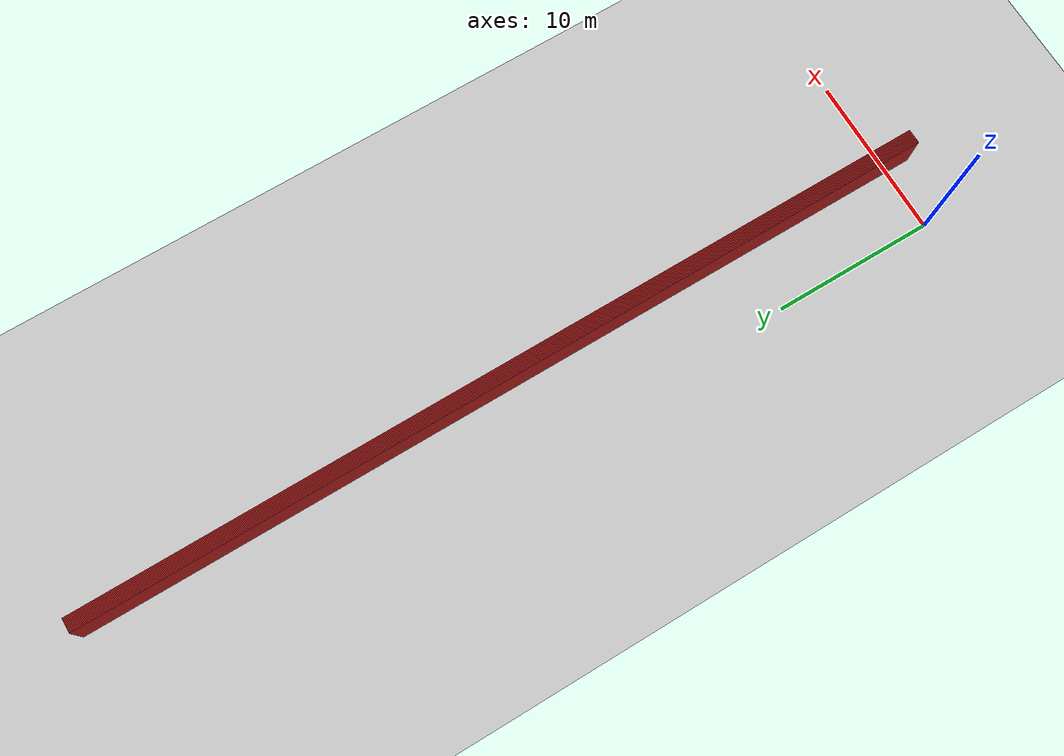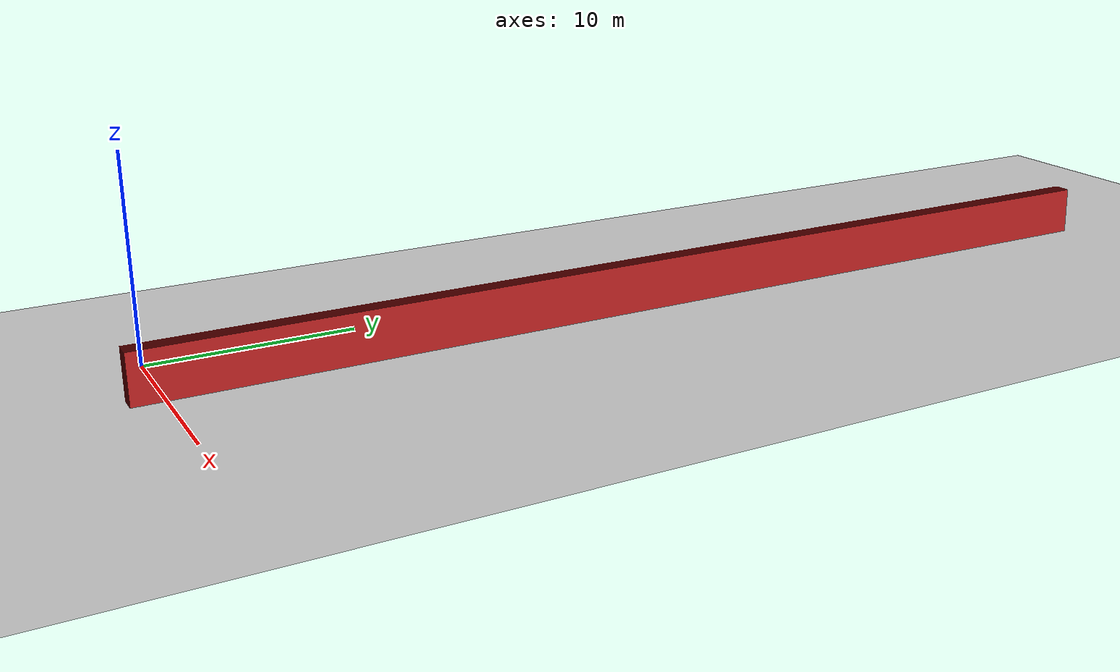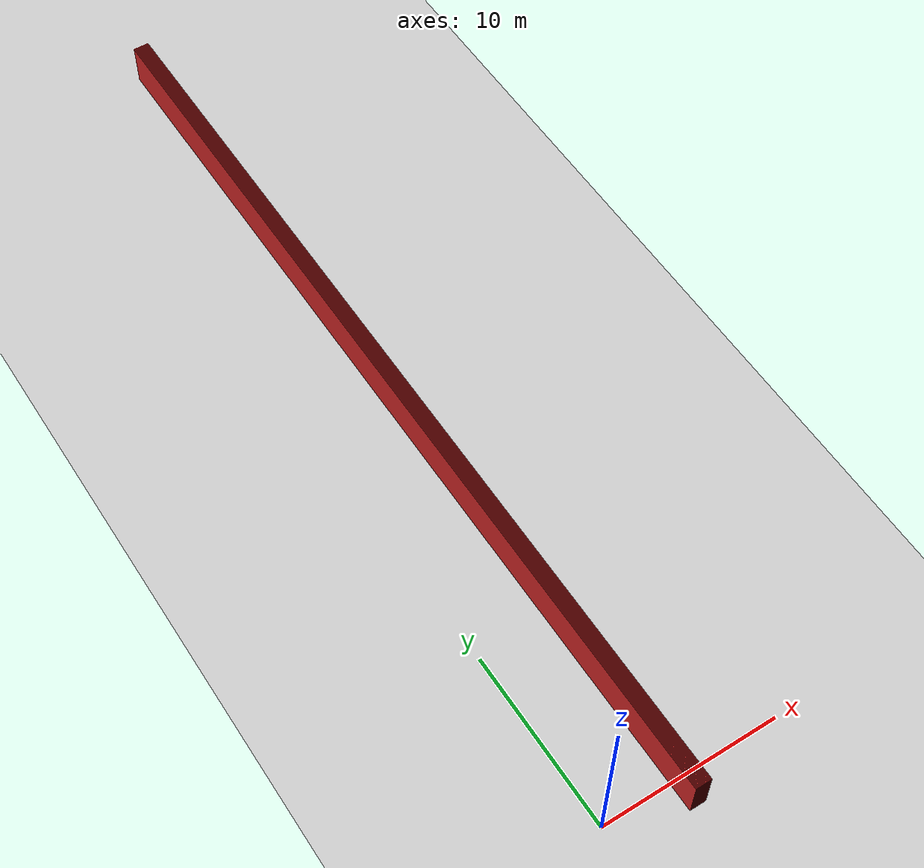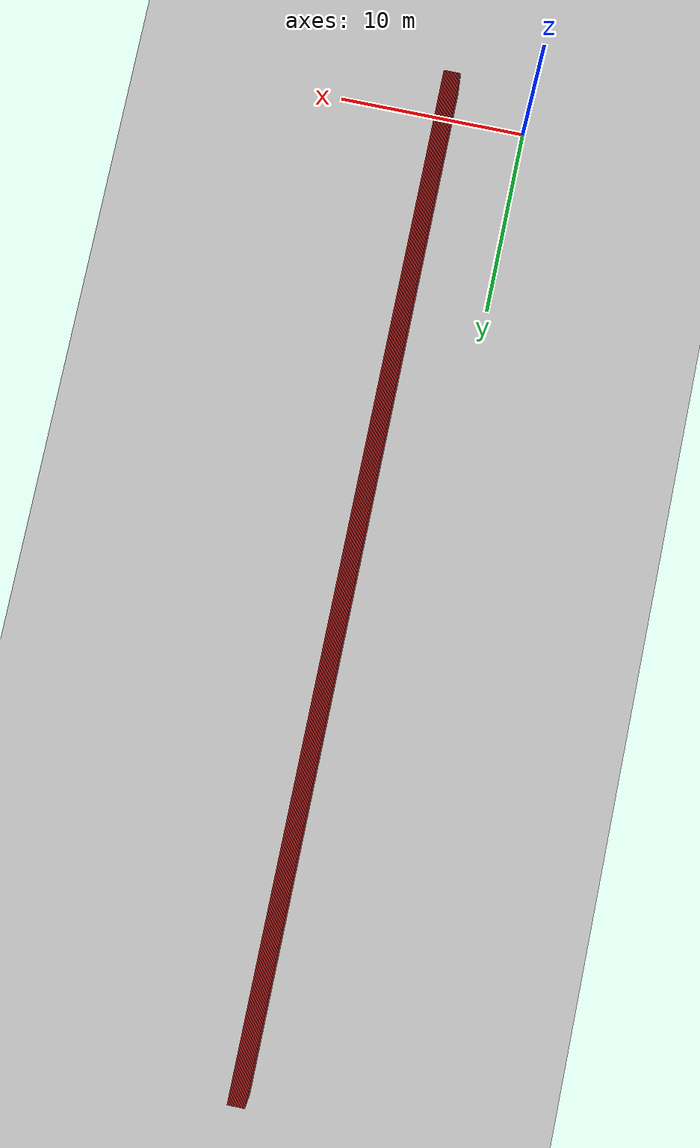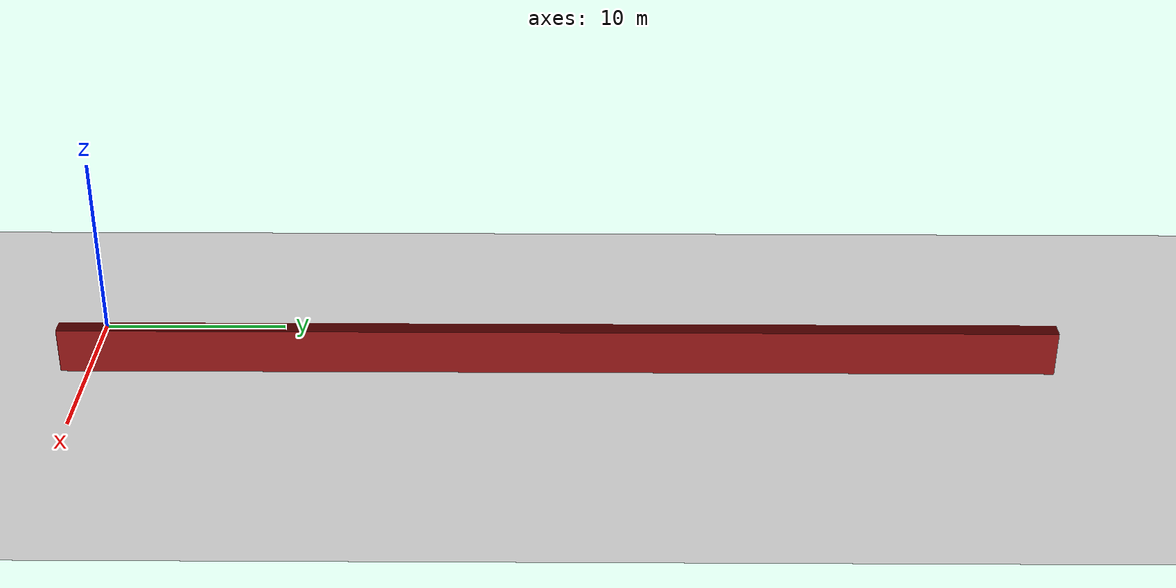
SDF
<sdf version="1.4">
 <world name="1_wall">
  <model name="ground_plane">
   <static>1</static>
   <link name="link">
    <collision name="collision">
     <geometry><plane><normal>0 0 1</normal><size>1000 1000</size></plane></geometry>
     <surface><friction><ode><mu>100</mu><mu2>50</mu2></ode></friction></surface>
    </collision>
    <visual name="visual">
     <cast_shadows>0</cast_shadows>
     <geometry><plane><normal>0 0 1</normal><size>10000 10000</size></plane></geometry>
     <material>
      <script><uri>file://media/materials/scripts/gazebo.material</uri><name>Gazebo/Grey</name></script>
     </material>
    </visual>
    <velocity_decay><linear>0</linear><angular>0</angular></velocity_decay>
   </link>
  </model>
  <model name="Wall_108">
   <static>1</static>
   <link name="Wall_108">
    <collision name="Wall_Collision_108">
     <geometry><box><size>53.65 0.05 2.5</size></box></geometry>
     <pose>0 0 1.25 0 -0 0</pose>
    </collision>
    <visual name="Wall_Visual_108">
     <pose>0 0 1.25 0 -0 0</pose>
     <geometry><box><size>53.65 0.05 2.5</size></box></geometry>
     <material>
      <script><uri>file://media/materials/scripts/gazebo.material</uri><name>Gazebo/Red</name></script>
     </material>
    </visual>
    <velocity_decay><linear>0</linear><angular>0</angular></velocity_decay>
    <pose>3.9 25.3 0 0 0 1.5707963267948966</pose>
   </link>
  </model>
  <model name="Wall_109">
   <static>1</static>
   <link name="Wall_109">
    <collision name="Wall_Collision_109">
     <geometry><box><size>53.65 0.05 2.5</size></box></geometry>
     <pose>0 0 1.25 0 -0 0</pose>
    </collision>
    <visual name="Wall_Visual_109">
     <pose>0 0 1.25 0 -0 0</pose>
     <geometry><box><size>53.65 0.05 2.5</size></box></geometry>
     <material>
      <script><uri>file://media/materials/scripts/gazebo.material</uri><name>Gazebo/Red</name></script>
     </material>
    </visual>
    <velocity_decay><linear>0</linear><angular>0</angular></velocity_decay>
    <pose>3.95 25.3 0 0 0 1.5707963267948966</pose>
   </link>
  </model>
  <model name="Wall_110">
   <static>1</static>
   <link name="Wall_110">
    <collision name="Wall_Collision_110">
     <geometry><box><size>53.65 0.05 2.5</size></box></geometry>
     <pose>0 0 1.25 0 -0 0</pose>
    </collision>
    <visual name="Wall_Visual_110">
     <pose>0 0 1.25 0 -0 0</pose>
     <geometry><box><size>53.65 0.05 2.5</size></box></geometry>
     <material>
      <script><uri>file://media/materials/scripts/gazebo.material</uri><name>Gazebo/Red</name></script>
     </material>
    </visual>
    <velocity_decay><linear>0</linear><angular>0</angular></velocity_decay>
    <pose>4.0 25.3 0 0 0 1.5707963267948966</pose>
   </link>
  </model>
  <model name="Wall_111">
   <static>1</static>
   <link name="Wall_111">
    <collision name="Wall_Collision_111">
     <geometry><box><size>53.65 0.05 2.5</size></box></geometry>
     <pose>0 0 1.25 0 -0 0</pose>
    </collision>
    <visual name="Wall_Visual_111">
     <pose>0 0 1.25 0 -0 0</pose>
     <geometry><box><size>53.65 0.05 2.5</size></box></geometry>
     <material>
      <script><uri>file://media/materials/scripts/gazebo.material</uri><name>Gazebo/Red</name></script>
     </material>
    </visual>
    <velocity_decay><linear>0</linear><angular>0</angular></velocity_decay>
    <pose>4.05 25.3 0 0 0 1.5707963267948966</pose>
   </link>
  </model>
  <model name="Wall_112">
   <static>1</static>
   <link name="Wall_112">
    <collision name="Wall_Collision_112">
     <geometry><box><size>53.65 0.05 2.5</size></box></geometry>
     <pose>0 0 1.25 0 -0 0</pose>
    </collision>
    <visual name="Wall_Visual_112">
     <pose>0 0 1.25 0 -0 0</pose>
     <geometry><box><size>53.65 0.05 2.5</size></box></geometry>
     <material>
      <script><uri>file://media/materials/scripts/gazebo.material</uri><name>Gazebo/Red</name></script>
     </material>
    </visual>
    <velocity_decay><linear>0</linear><angular>0</angular></velocity_decay>
    <pose>4.1 25.3 0 0 0 1.5707963267948966</pose>
   </link>
  </model>
  <model name="Wall_113">
   <static>1</static>
   <link name="Wall_113">
    <collision name="Wall_Collision_113">
     <geometry><box><size>53.65 0.05 2.5</size></box></geometry>
     <pose>0 0 1.25 0 -0 0</pose>
    </collision>
    <visual name="Wall_Visual_113">
     <pose>0 0 1.25 0 -0 0</pose>
     <geometry><box><size>53.65 0.05 2.5</size></box></geometry>
     <material>
      <script><uri>file://media/materials/scripts/gazebo.material</uri><name>Gazebo/Red</name></script>
     </material>
    </visual>
    <velocity_decay><linear>0</linear><angular>0</angular></velocity_decay>
    <pose>4.15 25.3 0 0 0 1.5707963267948966</pose>
   </link>
  </model>
  <model name="Wall_114">
   <static>1</static>
   <link name="Wall_114">
    <collision name="Wall_Collision_114">
     <geometry><box><size>53.65 0.05 2.5</size></box></geometry>
     <pose>0 0 1.25 0 -0 0</pose>
    </collision>
    <visual name="Wall_Visual_114">
     <pose>0 0 1.25 0 -0 0</pose>
     <geometry><box><size>53.65 0.05 2.5</size></box></geometry>
     <material>
      <script><uri>file://media/materials/scripts/gazebo.material</uri><name>Gazebo/Red</name></script>
     </material>
    </visual>
    <velocity_decay><linear>0</linear><angular>0</angular></velocity_decay>
    <pose>4.2 25.3 0 0 0 1.5707963267948966</pose>
   </link>
  </model>
  <model name="Wall_115">
   <static>1</static>
   <link name="Wall_115">
    <collision name="Wall_Collision_115">
     <geometry><box><size>53.65 0.05 2.5</size></box></geometry>
     <pose>0 0 1.25 0 -0 0</pose>
    </collision>
    <visual name="Wall_Visual_115">
     <pose>0 0 1.25 0 -0 0</pose>
     <geometry><box><size>53.65 0.05 2.5</size></box></geometry>
     <material>
      <script><uri>file://media/materials/scripts/gazebo.material</uri><name>Gazebo/Red</name></script>
     </material>
    </visual>
    <velocity_decay><linear>0</linear><angular>0</angular></velocity_decay>
    <pose>4.25 25.3 0 0 0 1.5707963267948966</pose>
   </link>
  </model>
  <model name="Wall_116">
   <static>1</static>
   <link name="Wall_116">
    <collision name="Wall_Collision_116">
     <geometry><box><size>53.65 0.05 2.5</size></box></geometry>
     <pose>0 0 1.25 0 -0 0</pose>
    </collision>
    <visual name="Wall_Visual_116">
     <pose>0 0 1.25 0 -0 0</pose>
     <geometry><box><size>53.65 0.05 2.5</size></box></geometry>
     <material>
      <script><uri>file://media/materials/scripts/gazebo.material</uri><name>Gazebo/Red</name></script>
     </material>
    </visual>
    <velocity_decay><linear>0</linear><angular>0</angular></velocity_decay>
    <pose>4.3 25.3 0 0 0 1.5707963267948966</pose>
   </link>
  </model>
  <model name="Wall_117">
   <static>1</static>
   <link name="Wall_117">
    <collision name="Wall_Collision_117">
     <geometry><box><size>53.65 0.05 2.5</size></box></geometry>
     <pose>0 0 1.25 0 -0 0</pose>
    </collision>
    <visual name="Wall_Visual_117">
     <pose>0 0 1.25 0 -0 0</pose>
     <geometry><box><size>53.65 0.05 2.5</size></box></geometry>
     <material>
      <script><uri>file://media/materials/scripts/gazebo.material</uri><name>Gazebo/Red</name></script>
     </material>
    </visual>
    <velocity_decay><linear>0</linear><angular>0</angular></velocity_decay>
    <pose>4.35 25.3 0 0 0 1.5707963267948966</pose>
   </link>
  </model>
  <model name="Wall_118">
   <static>1</static>
   <link name="Wall_118">
    <collision name="Wall_Collision_118">
     <geometry><box><size>53.65 0.05 2.5</size></box></geometry>
     <pose>0 0 1.25 0 -0 0</pose>
    </collision>
    <visual name="Wall_Visual_118">
     <pose>0 0 1.25 0 -0 0</pose>
     <geometry><box><size>53.65 0.05 2.5</size></box></geometry>
     <material>
      <script><uri>file://media/materials/scripts/gazebo.material</uri><name>Gazebo/Red</name></script>
     </material>
    </visual>
    <velocity_decay><linear>0</linear><angular>0</angular></velocity_decay>
    <pose>4.4 25.3 0 0 0 1.5707963267948966</pose>
   </link>
  </model>
  <model name="Wall_119">
   <static>1</static>
   <link name="Wall_119">
    <collision name="Wall_Collision_119">
     <geometry><box><size>53.65 0.05 2.5</size></box></geometry>
     <pose>0 0 1.25 0 -0 0</pose>
    </collision>
    <visual name="Wall_Visual_119">
     <pose>0 0 1.25 0 -0 0</pose>
     <geometry><box><size>53.65 0.05 2.5</size></box></geometry>
     <material>
      <script><uri>file://media/materials/scripts/gazebo.material</uri><name>Gazebo/Red</name></script>
     </material>
    </visual>
    <velocity_decay><linear>0</linear><angular>0</angular></velocity_decay>
    <pose>4.45 25.3 0 0 0 1.5707963267948966</pose>
   </link>
  </model>
  <model name="Wall_120">
   <static>1</static>
   <link name="Wall_120">
    <collision name="Wall_Collision_120">
     <geometry><box><size>53.65 0.05 2.5</size></box></geometry>
     <pose>0 0 1.25 0 -0 0</pose>
    </collision>
    <visual name="Wall_Visual_120">
     <pose>0 0 1.25 0 -0 0</pose>
     <geometry><box><size>53.65 0.05 2.5</size></box></geometry>
     <material>
      <script><uri>file://media/materials/scripts/gazebo.material</uri><name>Gazebo/Red</name></script>
     </material>
    </visual>
    <velocity_decay><linear>0</linear><angular>0</angular></velocity_decay>
    <pose>4.5 25.3 0 0 0 1.5707963267948966</pose>
   </link>
  </model>
  <model name="Wall_121">
   <static>1</static>
   <link name="Wall_121">
    <collision name="Wall_Collision_121">
     <geometry><box><size>53.65 0.05 2.5</size></box></geometry>
     <pose>0 0 1.25 0 -0 0</pose>
    </collision>
    <visual name="Wall_Visual_121">
     <pose>0 0 1.25 0 -0 0</pose>
     <geometry><box><size>53.65 0.05 2.5</size></box></geometry>
     <material>
      <script><uri>file://media/materials/scripts/gazebo.material</uri><name>Gazebo/Red</name></script>
     </material>
    </visual>
    <velocity_decay><linear>0</linear><angular>0</angular></velocity_decay>
    <pose>4.55 25.3 0 0 0 1.5707963267948966</pose>
   </link>
  </model>
  <model name="Wall_122">
   <static>1</static>
   <link name="Wall_122">
    <collision name="Wall_Collision_122">
     <geometry><box><size>53.65 0.05 2.5</size></box></geometry>
     <pose>0 0 1.25 0 -0 0</pose>
    </collision>
    <visual name="Wall_Visual_122">
     <pose>0 0 1.25 0 -0 0</pose>
     <geometry><box><size>53.65 0.05 2.5</size></box></geometry>
     <material>
      <script><uri>file://media/materials/scripts/gazebo.material</uri><name>Gazebo/Red</name></script>
     </material>
    </visual>
    <velocity_decay><linear>0</linear><angular>0</angular></velocity_decay>
    <pose>4.6 25.3 0 0 0 1.5707963267948966</pose>
   </link>
  </model>
  <model name="Wall_123">
   <static>1</static>
   <link name="Wall_123">
    <collision name="Wall_Collision_123">
     <geometry><box><size>53.65 0.05 2.5</size></box></geometry>
     <pose>0 0 1.25 0 -0 0</pose>
    </collision>
    <visual name="Wall_Visual_123">
     <pose>0 0 1.25 0 -0 0</pose>
     <geometry><box><size>53.65 0.05 2.5</size></box></geometry>
     <material>
      <script><uri>file://media/materials/scripts/gazebo.material</uri><name>Gazebo/Red</name></script>
     </material>
    </visual>
    <velocity_decay><linear>0</linear><angular>0</angular></velocity_decay>
    <pose>4.65 25.3 0 0 0 1.5707963267948966</pose>
   </link>
  </model>
  <model name="Wall_124">
   <static>1</static>
   <link name="Wall_124">
    <collision name="Wall_Collision_124">
     <geometry><box><size>53.65 0.05 2.5</size></box></geometry>
     <pose>0 0 1.25 0 -0 0</pose>
    </collision>
    <visual name="Wall_Visual_124">
     <pose>0 0 1.25 0 -0 0</pose>
     <geometry><box><size>53.65 0.05 2.5</size></box></geometry>
     <material>
      <script><uri>file://media/materials/scripts/gazebo.material</uri><name>Gazebo/Red</name></script>
     </material>
    </visual>
    <velocity_decay><linear>0</linear><angular>0</angular></velocity_decay>
    <pose>4.7 25.3 0 0 0 1.5707963267948966</pose>
   </link>
  </model>
  <model name="Wall_125">
   <static>1</static>
   <link name="Wall_125">
    <collision name="Wall_Collision_125">
     <geometry><box><size>53.65 0.05 2.5</size></box></geometry>
     <pose>0 0 1.25 0 -0 0</pose>
    </collision>
    <visual name="Wall_Visual_125">
     <pose>0 0 1.25 0 -0 0</pose>
     <geometry><box><size>53.65 0.05 2.5</size></box></geometry>
     <material>
      <script><uri>file://media/materials/scripts/gazebo.material</uri><name>Gazebo/Red</name></script>
     </material>
    </visual>
    <velocity_decay><linear>0</linear><angular>0</angular></velocity_decay>
    <pose>4.75 25.3 0 0 0 1.5707963267948966</pose>
   </link>
  </model>
 </world>
</sdf>
